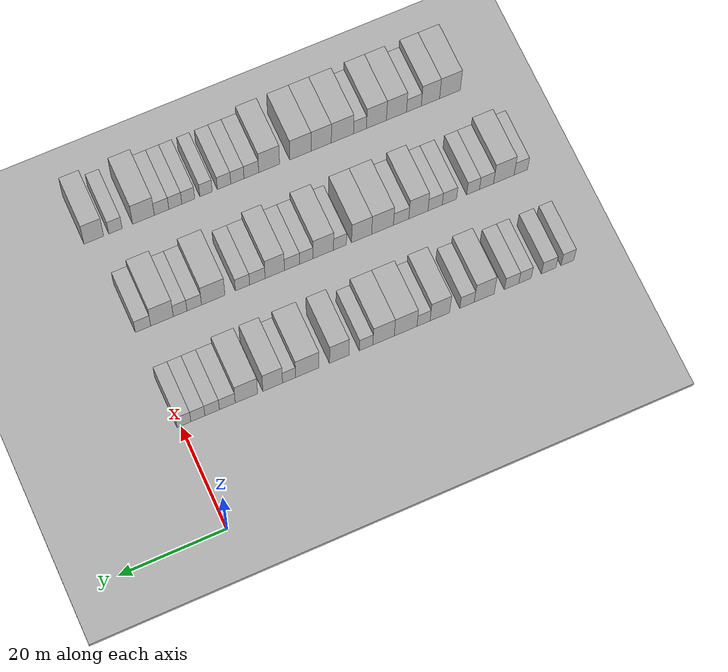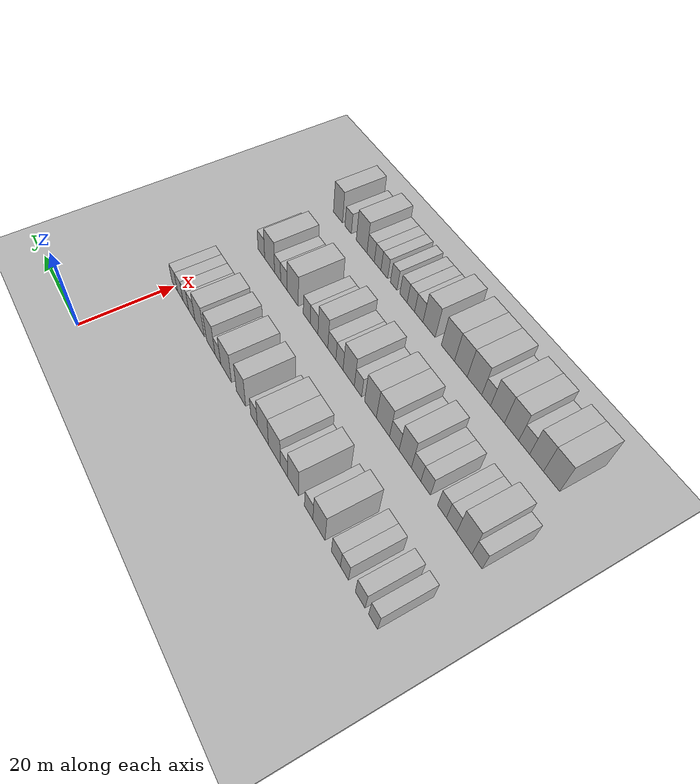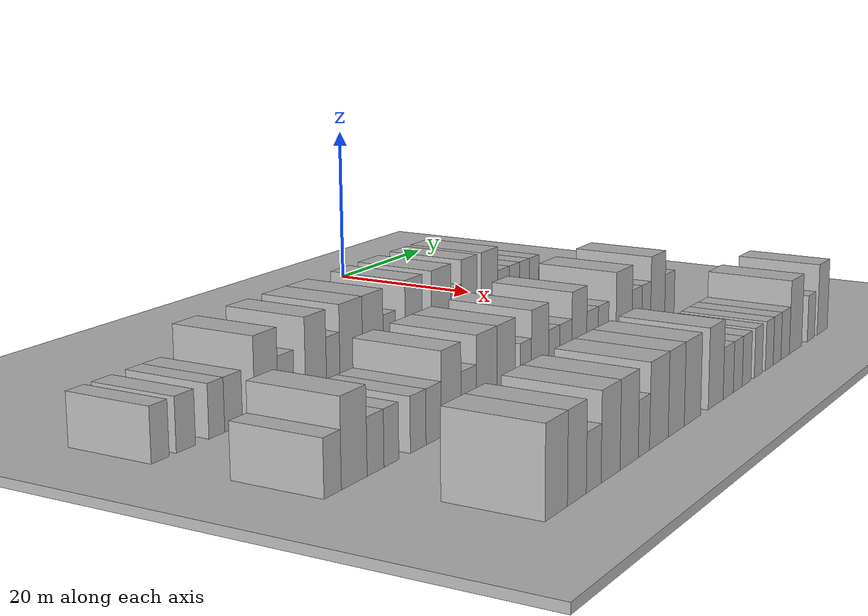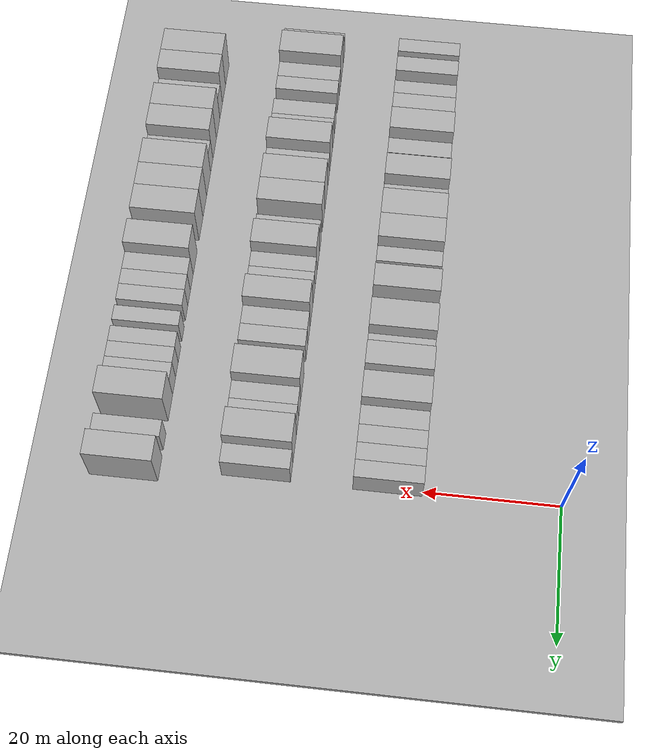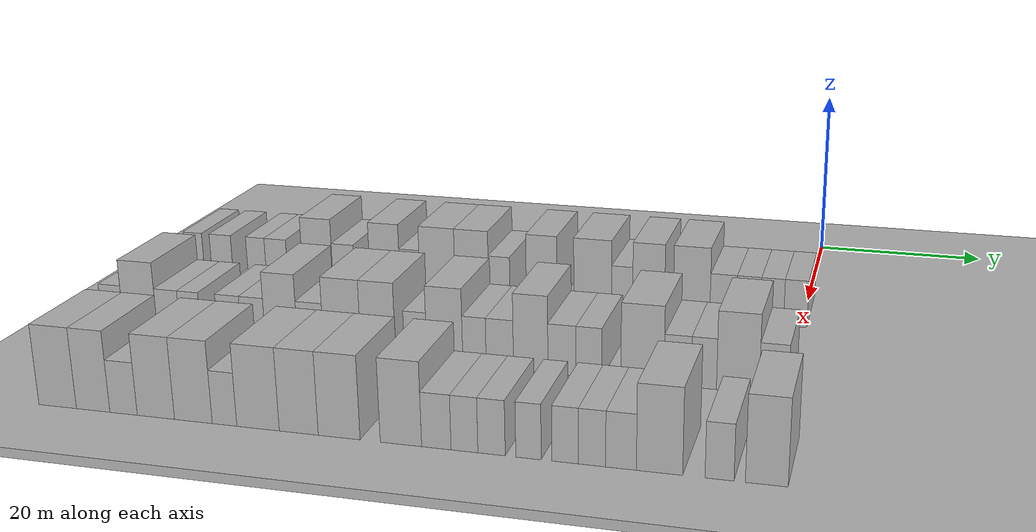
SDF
<sdf version="1.6">
 <world name="default">
  <include><name>ground_plane_1</name><uri>model://HANNAS_ground_plane</uri></include>
  <include>
   <name>ground_plane_2</name>
   <uri>model://HANNAS_ground_plane</uri>
   <pose>100 0 0  0 0 0</pose>
  </include>
  <model name="building_42">
   <static>1</static>
   <pose>25.0000 -74.1656 0 0.000000 0.000000 0.000000</pose>
   <link name="link">
    <pose>0 0 3.00 0 0 0</pose>
    <collision name="collision"><geometry><box><size>10.0000 2.5212 6.0000</size></box></geometry></collision>
    <visual name="visual">
     <cast_shadows>0</cast_shadows>
     <geometry><box><size>10.0000 2.5212 6.0000</size></box></geometry>
     <material>
      <script>
       <uri>model://HANNAS_wall/materials/scripts</uri>
       <uri>model://HANNAS_wall/materials/textures</uri>
       <name>vrc/HANNAS_wall</name>
      </script>
     </material>
    </visual>
   </link>
  </model>
  <model name="building_43">
   <static>1</static>
   <pose>25.0000 -70.4947 0 0.000000 0.000000 0.000000</pose>
   <link name="link">
    <pose>0 0 3.00 0 0 0</pose>
    <collision name="collision"><geometry><box><size>10.0000 2.8206 6.0000</size></box></geometry></collision>
    <visual name="visual">
     <cast_shadows>0</cast_shadows>
     <geometry><box><size>10.0000 2.8206 6.0000</size></box></geometry>
     <material>
      <script>
       <uri>model://HANNAS_wall/materials/scripts</uri>
       <uri>model://HANNAS_wall/materials/textures</uri>
       <name>vrc/HANNAS_wall</name>
      </script>
     </material>
    </visual>
   </link>
  </model>
  <model name="building_44">
   <static>1</static>
   <pose>25.0000 -65.8738 0 0.000000 0.000000 0.000000</pose>
   <link name="link">
    <pose>0 0 3.00 0 0 0</pose>
    <collision name="collision"><geometry><box><size>10.0000 2.4212 6.0000</size></box></geometry></collision>
    <visual name="visual">
     <cast_shadows>0</cast_shadows>
     <geometry><box><size>10.0000 2.4212 6.0000</size></box></geometry>
     <material>
      <script>
       <uri>model://HANNAS_wall/materials/scripts</uri>
       <uri>model://HANNAS_wall/materials/textures</uri>
       <name>vrc/HANNAS_wall</name>
      </script>
     </material>
    </visual>
   </link>
  </model>
  <model name="building_45">
   <static>1</static>
   <pose>25.0000 -63.2611 0 0.000000 0.000000 0.000000</pose>
   <link name="link">
    <pose>0 0 3.00 0 0 0</pose>
    <collision name="collision"><geometry><box><size>10.0000 2.8042 6.0000</size></box></geometry></collision>
    <visual name="visual">
     <cast_shadows>0</cast_shadows>
     <geometry><box><size>10.0000 2.8042 6.0000</size></box></geometry>
     <material>
      <script>
       <uri>model://HANNAS_wall/materials/scripts</uri>
       <uri>model://HANNAS_wall/materials/textures</uri>
       <name>vrc/HANNAS_wall</name>
      </script>
     </material>
    </visual>
   </link>
  </model>
  <model name="building_46">
   <static>1</static>
   <pose>25.0000 -57.9192 0 0.000000 0.000000 0.000000</pose>
   <link name="link">
    <pose>0 0 4.50 0 0 0</pose>
    <collision name="collision"><geometry><box><size>10.0000 3.8795 9.0000</size></box></geometry></collision>
    <visual name="visual">
     <cast_shadows>0</cast_shadows>
     <geometry><box><size>10.0000 3.8795 9.0000</size></box></geometry>
     <material>
      <script>
       <uri>model://HANNAS_wall/materials/scripts</uri>
       <uri>model://HANNAS_wall/materials/textures</uri>
       <name>vrc/HANNAS_wall</name>
      </script>
     </material>
    </visual>
   </link>
  </model>
  <model name="building_47">
   <static>1</static>
   <pose>25.0000 -54.5918 0 0.000000 0.000000 0.000000</pose>
   <link name="link">
    <pose>0 0 3.00 0 0 0</pose>
    <collision name="collision"><geometry><box><size>10.0000 2.7754 6.0000</size></box></geometry></collision>
    <visual name="visual">
     <cast_shadows>0</cast_shadows>
     <geometry><box><size>10.0000 2.7754 6.0000</size></box></geometry>
     <material>
      <script>
       <uri>model://HANNAS_wall/materials/scripts</uri>
       <uri>model://HANNAS_wall/materials/textures</uri>
       <name>vrc/HANNAS_wall</name>
      </script>
     </material>
    </visual>
   </link>
  </model>
  <model name="building_48">
   <static>1</static>
   <pose>25.0000 -49.3145 0 0.000000 0.000000 0.000000</pose>
   <link name="link">
    <pose>0 0 4.50 0 0 0</pose>
    <collision name="collision"><geometry><box><size>10.0000 3.7791 9.0000</size></box></geometry></collision>
    <visual name="visual">
     <cast_shadows>0</cast_shadows>
     <geometry><box><size>10.0000 3.7791 9.0000</size></box></geometry>
     <material>
      <script>
       <uri>model://HANNAS_wall/materials/scripts</uri>
       <uri>model://HANNAS_wall/materials/textures</uri>
       <name>vrc/HANNAS_wall</name>
      </script>
     </material>
    </visual>
   </link>
  </model>
  <model name="building_49">
   <static>1</static>
   <pose>25.0000 -46.1671 0 0.000000 0.000000 0.000000</pose>
   <link name="link">
    <pose>0 0 3.00 0 0 0</pose>
    <collision name="collision"><geometry><box><size>10.0000 2.5156 6.0000</size></box></geometry></collision>
    <visual name="visual">
     <cast_shadows>0</cast_shadows>
     <geometry><box><size>10.0000 2.5156 6.0000</size></box></geometry>
     <material>
      <script>
       <uri>model://HANNAS_wall/materials/scripts</uri>
       <uri>model://HANNAS_wall/materials/textures</uri>
       <name>vrc/HANNAS_wall</name>
      </script>
     </material>
    </visual>
   </link>
  </model>
  <model name="building_50">
   <static>1</static>
   <pose>25.0000 -42.7216 0 0.000000 0.000000 0.000000</pose>
   <link name="link">
    <pose>0 0 4.50 0 0 0</pose>
    <collision name="collision"><geometry><box><size>10.0000 4.3754 9.0000</size></box></geometry></collision>
    <visual name="visual">
     <cast_shadows>0</cast_shadows>
     <geometry><box><size>10.0000 4.3754 9.0000</size></box></geometry>
     <material>
      <script>
       <uri>model://HANNAS_wall/materials/scripts</uri>
       <uri>model://HANNAS_wall/materials/textures</uri>
       <name>vrc/HANNAS_wall</name>
      </script>
     </material>
    </visual>
   </link>
  </model>
  <model name="building_51">
   <static>1</static>
   <pose>25.0000 -38.4709 0 0.000000 0.000000 0.000000</pose>
   <link name="link">
    <pose>0 0 4.50 0 0 0</pose>
    <collision name="collision"><geometry><box><size>10.0000 4.1260 9.0000</size></box></geometry></collision>
    <visual name="visual">
     <cast_shadows>0</cast_shadows>
     <geometry><box><size>10.0000 4.1260 9.0000</size></box></geometry>
     <material>
      <script>
       <uri>model://HANNAS_wall/materials/scripts</uri>
       <uri>model://HANNAS_wall/materials/textures</uri>
       <name>vrc/HANNAS_wall</name>
      </script>
     </material>
    </visual>
   </link>
  </model>
  <model name="building_52">
   <static>1</static>
   <pose>25.0000 -35.1156 0 0.000000 0.000000 0.000000</pose>
   <link name="link">
    <pose>0 0 3.00 0 0 0</pose>
    <collision name="collision"><geometry><box><size>10.0000 2.5847 6.0000</size></box></geometry></collision>
    <visual name="visual">
     <cast_shadows>0</cast_shadows>
     <geometry><box><size>10.0000 2.5847 6.0000</size></box></geometry>
     <material>
      <script>
       <uri>model://HANNAS_wall/materials/scripts</uri>
       <uri>model://HANNAS_wall/materials/textures</uri>
       <name>vrc/HANNAS_wall</name>
      </script>
     </material>
    </visual>
   </link>
  </model>
  <model name="building_53">
   <static>1</static>
   <pose>25.0000 -29.9718 0 0.000000 0.000000 0.000000</pose>
   <link name="link">
    <pose>0 0 4.50 0 0 0</pose>
    <collision name="collision"><geometry><box><size>10.0000 3.7028 9.0000</size></box></geometry></collision>
    <visual name="visual">
     <cast_shadows>0</cast_shadows>
     <geometry><box><size>10.0000 3.7028 9.0000</size></box></geometry>
     <material>
      <script>
       <uri>model://HANNAS_wall/materials/scripts</uri>
       <uri>model://HANNAS_wall/materials/textures</uri>
       <name>vrc/HANNAS_wall</name>
      </script>
     </material>
    </visual>
   </link>
  </model>
  <model name="building_54">
   <static>1</static>
   <pose>25.0000 -23.8751 0 0.000000 0.000000 0.000000</pose>
   <link name="link">
    <pose>0 0 4.50 0 0 0</pose>
    <collision name="collision"><geometry><box><size>10.0000 4.4907 9.0000</size></box></geometry></collision>
    <visual name="visual">
     <cast_shadows>0</cast_shadows>
     <geometry><box><size>10.0000 4.4907 9.0000</size></box></geometry>
     <material>
      <script>
       <uri>model://HANNAS_wall/materials/scripts</uri>
       <uri>model://HANNAS_wall/materials/textures</uri>
       <name>vrc/HANNAS_wall</name>
      </script>
     </material>
    </visual>
   </link>
  </model>
  <model name="building_55">
   <static>1</static>
   <pose>25.0000 -20.3982 0 0.000000 0.000000 0.000000</pose>
   <link name="link">
    <pose>0 0 3.00 0 0 0</pose>
    <collision name="collision"><geometry><box><size>10.0000 2.4630 6.0000</size></box></geometry></collision>
    <visual name="visual">
     <cast_shadows>0</cast_shadows>
     <geometry><box><size>10.0000 2.4630 6.0000</size></box></geometry>
     <material>
      <script>
       <uri>model://HANNAS_wall/materials/scripts</uri>
       <uri>model://HANNAS_wall/materials/textures</uri>
       <name>vrc/HANNAS_wall</name>
      </script>
     </material>
    </visual>
   </link>
  </model>
  <model name="building_56">
   <static>1</static>
   <pose>25.0000 -17.3053 0 0.000000 0.000000 0.000000</pose>
   <link name="link">
    <pose>0 0 4.50 0 0 0</pose>
    <collision name="collision"><geometry><box><size>10.0000 3.7229 9.0000</size></box></geometry></collision>
    <visual name="visual">
     <cast_shadows>0</cast_shadows>
     <geometry><box><size>10.0000 3.7229 9.0000</size></box></geometry>
     <material>
      <script>
       <uri>model://HANNAS_wall/materials/scripts</uri>
       <uri>model://HANNAS_wall/materials/textures</uri>
       <name>vrc/HANNAS_wall</name>
      </script>
     </material>
    </visual>
   </link>
  </model>
  <model name="building_57">
   <static>1</static>
   <pose>25.0000 -12.3346 0 0.000000 0.000000 0.000000</pose>
   <link name="link">
    <pose>0 0 4.50 0 0 0</pose>
    <collision name="collision"><geometry><box><size>10.0000 4.2184 9.0000</size></box></geometry></collision>
    <visual name="visual">
     <cast_shadows>0</cast_shadows>
     <geometry><box><size>10.0000 4.2184 9.0000</size></box></geometry>
     <material>
      <script>
       <uri>model://HANNAS_wall/materials/scripts</uri>
       <uri>model://HANNAS_wall/materials/textures</uri>
       <name>vrc/HANNAS_wall</name>
      </script>
     </material>
    </visual>
   </link>
  </model>
  <model name="building_58">
   <static>1</static>
   <pose>25.0000 -8.7328 0 0.000000 0.000000 0.000000</pose>
   <link name="link">
    <pose>0 0 3.00 0 0 0</pose>
    <collision name="collision"><geometry><box><size>10.0000 2.9853 6.0000</size></box></geometry></collision>
    <visual name="visual">
     <cast_shadows>0</cast_shadows>
     <geometry><box><size>10.0000 2.9853 6.0000</size></box></geometry>
     <material>
      <script>
       <uri>model://HANNAS_wall/materials/scripts</uri>
       <uri>model://HANNAS_wall/materials/textures</uri>
       <name>vrc/HANNAS_wall</name>
      </script>
     </material>
    </visual>
   </link>
  </model>
  <model name="building_59">
   <static>1</static>
   <pose>25.0000 -5.8702 0 0.000000 0.000000 0.000000</pose>
   <link name="link">
    <pose>0 0 3.00 0 0 0</pose>
    <collision name="collision"><geometry><box><size>10.0000 2.7400 6.0000</size></box></geometry></collision>
    <visual name="visual">
     <cast_shadows>0</cast_shadows>
     <geometry><box><size>10.0000 2.7400 6.0000</size></box></geometry>
     <material>
      <script>
       <uri>model://HANNAS_wall/materials/scripts</uri>
       <uri>model://HANNAS_wall/materials/textures</uri>
       <name>vrc/HANNAS_wall</name>
      </script>
     </material>
    </visual>
   </link>
  </model>
  <model name="building_60">
   <static>1</static>
   <pose>25.0000 -3.1860 0 0.000000 0.000000 0.000000</pose>
   <link name="link">
    <pose>0 0 3.00 0 0 0</pose>
    <collision name="collision"><geometry><box><size>10.0000 2.6282 6.0000</size></box></geometry></collision>
    <visual name="visual">
     <cast_shadows>0</cast_shadows>
     <geometry><box><size>10.0000 2.6282 6.0000</size></box></geometry>
     <material>
      <script>
       <uri>model://HANNAS_wall/materials/scripts</uri>
       <uri>model://HANNAS_wall/materials/textures</uri>
       <name>vrc/HANNAS_wall</name>
      </script>
     </material>
    </visual>
   </link>
  </model>
  <model name="building_61">
   <static>1</static>
   <pose>25.0000 -0.5667 0 0.000000 0.000000 0.000000</pose>
   <link name="link">
    <pose>0 0 3.00 0 0 0</pose>
    <collision name="collision"><geometry><box><size>10.0000 2.6105 6.0000</size></box></geometry></collision>
    <visual name="visual">
     <cast_shadows>0</cast_shadows>
     <geometry><box><size>10.0000 2.6105 6.0000</size></box></geometry>
     <material>
      <script>
       <uri>model://HANNAS_wall/materials/scripts</uri>
       <uri>model://HANNAS_wall/materials/textures</uri>
       <name>vrc/HANNAS_wall</name>
      </script>
     </material>
    </visual>
   </link>
  </model>
  <model name="building_164">
   <static>1</static>
   <pose>44.0000 -74.0968 0 0.000000 0.000000 0.000000</pose>
   <link name="link">
    <pose>0 0 3.00 0 0 0</pose>
    <collision name="collision"><geometry><box><size>10.0000 2.6475 6.0000</size></box></geometry></collision>
    <visual name="visual">
     <cast_shadows>0</cast_shadows>
     <geometry><box><size>10.0000 2.6475 6.0000</size></box></geometry>
     <material>
      <script>
       <uri>model://HANNAS_wall/materials/scripts</uri>
       <uri>model://HANNAS_wall/materials/textures</uri>
       <name>vrc/HANNAS_wall</name>
      </script>
     </material>
    </visual>
   </link>
  </model>
  <model name="building_165">
   <static>1</static>
   <pose>44.0000 -70.7334 0 0.000000 0.000000 0.000000</pose>
   <link name="link">
    <pose>0 0 4.50 0 0 0</pose>
    <collision name="collision"><geometry><box><size>10.0000 4.0792 9.0000</size></box></geometry></collision>
    <visual name="visual">
     <cast_shadows>0</cast_shadows>
     <geometry><box><size>10.0000 4.0792 9.0000</size></box></geometry>
     <material>
      <script>
       <uri>model://HANNAS_wall/materials/scripts</uri>
       <uri>model://HANNAS_wall/materials/textures</uri>
       <name>vrc/HANNAS_wall</name>
      </script>
     </material>
    </visual>
   </link>
  </model>
  <model name="building_166">
   <static>1</static>
   <pose>44.0000 -67.3080 0 0.000000 0.000000 0.000000</pose>
   <link name="link">
    <pose>0 0 3.00 0 0 0</pose>
    <collision name="collision"><geometry><box><size>10.0000 2.7715 6.0000</size></box></geometry></collision>
    <visual name="visual">
     <cast_shadows>0</cast_shadows>
     <geometry><box><size>10.0000 2.7715 6.0000</size></box></geometry>
     <material>
      <script>
       <uri>model://HANNAS_wall/materials/scripts</uri>
       <uri>model://HANNAS_wall/materials/textures</uri>
       <name>vrc/HANNAS_wall</name>
      </script>
     </material>
    </visual>
   </link>
  </model>
  <model name="building_167">
   <static>1</static>
   <pose>44.0000 -64.6648 0 0.000000 0.000000 0.000000</pose>
   <link name="link">
    <pose>0 0 3.00 0 0 0</pose>
    <collision name="collision"><geometry><box><size>10.0000 2.5149 6.0000</size></box></geometry></collision>
    <visual name="visual">
     <cast_shadows>0</cast_shadows>
     <geometry><box><size>10.0000 2.5149 6.0000</size></box></geometry>
     <material>
      <script>
       <uri>model://HANNAS_wall/materials/scripts</uri>
       <uri>model://HANNAS_wall/materials/textures</uri>
       <name>vrc/HANNAS_wall</name>
      </script>
     </material>
    </visual>
   </link>
  </model>
  <model name="building_168">
   <static>1</static>
   <pose>44.0000 -60.0041 0 0.000000 0.000000 0.000000</pose>
   <link name="link">
    <pose>0 0 3.00 0 0 0</pose>
    <collision name="collision"><geometry><box><size>10.0000 2.8065 6.0000</size></box></geometry></collision>
    <visual name="visual">
     <cast_shadows>0</cast_shadows>
     <geometry><box><size>10.0000 2.8065 6.0000</size></box></geometry>
     <material>
      <script>
       <uri>model://HANNAS_wall/materials/scripts</uri>
       <uri>model://HANNAS_wall/materials/textures</uri>
       <name>vrc/HANNAS_wall</name>
      </script>
     </material>
    </visual>
   </link>
  </model>
  <model name="building_169">
   <static>1</static>
   <pose>44.0000 -57.1997 0 0.000000 0.000000 0.000000</pose>
   <link name="link">
    <pose>0 0 3.00 0 0 0</pose>
    <collision name="collision"><geometry><box><size>10.0000 2.8023 6.0000</size></box></geometry></collision>
    <visual name="visual">
     <cast_shadows>0</cast_shadows>
     <geometry><box><size>10.0000 2.8023 6.0000</size></box></geometry>
     <material>
      <script>
       <uri>model://HANNAS_wall/materials/scripts</uri>
       <uri>model://HANNAS_wall/materials/textures</uri>
       <name>vrc/HANNAS_wall</name>
      </script>
     </material>
    </visual>
   </link>
  </model>
  <model name="building_170">
   <static>1</static>
   <pose>44.0000 -53.9188 0 0.000000 0.000000 0.000000</pose>
   <link name="link">
    <pose>0 0 4.50 0 0 0</pose>
    <collision name="collision"><geometry><box><size>10.0000 3.7595 9.0000</size></box></geometry></collision>
    <visual name="visual">
     <cast_shadows>0</cast_shadows>
     <geometry><box><size>10.0000 3.7595 9.0000</size></box></geometry>
     <material>
      <script>
       <uri>model://HANNAS_wall/materials/scripts</uri>
       <uri>model://HANNAS_wall/materials/textures</uri>
       <name>vrc/HANNAS_wall</name>
      </script>
     </material>
    </visual>
   </link>
  </model>
  <model name="building_171">
   <static>1</static>
   <pose>44.0000 -50.5417 0 0.000000 0.000000 0.000000</pose>
   <link name="link">
    <pose>0 0 3.00 0 0 0</pose>
    <collision name="collision"><geometry><box><size>10.0000 2.9947 6.0000</size></box></geometry></collision>
    <visual name="visual">
     <cast_shadows>0</cast_shadows>
     <geometry><box><size>10.0000 2.9947 6.0000</size></box></geometry>
     <material>
      <script>
       <uri>model://HANNAS_wall/materials/scripts</uri>
       <uri>model://HANNAS_wall/materials/textures</uri>
       <name>vrc/HANNAS_wall</name>
      </script>
     </material>
    </visual>
   </link>
  </model>
  <model name="building_172">
   <static>1</static>
   <pose>44.0000 -46.9150 0 0.000000 0.000000 0.000000</pose>
   <link name="link">
    <pose>0 0 4.50 0 0 0</pose>
    <collision name="collision"><geometry><box><size>10.0000 4.2586 9.0000</size></box></geometry></collision>
    <visual name="visual">
     <cast_shadows>0</cast_shadows>
     <geometry><box><size>10.0000 4.2586 9.0000</size></box></geometry>
     <material>
      <script>
       <uri>model://HANNAS_wall/materials/scripts</uri>
       <uri>model://HANNAS_wall/materials/textures</uri>
       <name>vrc/HANNAS_wall</name>
      </script>
     </material>
    </visual>
   </link>
  </model>
  <model name="building_173">
   <static>1</static>
   <pose>44.0000 -42.8309 0 0.000000 0.000000 0.000000</pose>
   <link name="link">
    <pose>0 0 4.50 0 0 0</pose>
    <collision name="collision"><geometry><box><size>10.0000 3.9097 9.0000</size></box></geometry></collision>
    <visual name="visual">
     <cast_shadows>0</cast_shadows>
     <geometry><box><size>10.0000 3.9097 9.0000</size></box></geometry>
     <material>
      <script>
       <uri>model://HANNAS_wall/materials/scripts</uri>
       <uri>model://HANNAS_wall/materials/textures</uri>
       <name>vrc/HANNAS_wall</name>
      </script>
     </material>
    </visual>
   </link>
  </model>
  <model name="building_174">
   <static>1</static>
   <pose>44.0000 -38.6258 0 0.000000 0.000000 0.000000</pose>
   <link name="link">
    <pose>0 0 3.00 0 0 0</pose>
    <collision name="collision"><geometry><box><size>10.0000 2.5004 6.0000</size></box></geometry></collision>
    <visual name="visual">
     <cast_shadows>0</cast_shadows>
     <geometry><box><size>10.0000 2.5004 6.0000</size></box></geometry>
     <material>
      <script>
       <uri>model://HANNAS_wall/materials/scripts</uri>
       <uri>model://HANNAS_wall/materials/textures</uri>
       <name>vrc/HANNAS_wall</name>
      </script>
     </material>
    </visual>
   </link>
  </model>
  <model name="building_175">
   <static>1</static>
   <pose>44.0000 -35.3883 0 0.000000 0.000000 0.000000</pose>
   <link name="link">
    <pose>0 0 4.50 0 0 0</pose>
    <collision name="collision"><geometry><box><size>10.0000 3.9746 9.0000</size></box></geometry></collision>
    <visual name="visual">
     <cast_shadows>0</cast_shadows>
     <geometry><box><size>10.0000 3.9746 9.0000</size></box></geometry>
     <material>
      <script>
       <uri>model://HANNAS_wall/materials/scripts</uri>
       <uri>model://HANNAS_wall/materials/textures</uri>
       <name>vrc/HANNAS_wall</name>
      </script>
     </material>
    </visual>
   </link>
  </model>
  <model name="building_176">
   <static>1</static>
   <pose>44.0000 -32.1208 0 0.000000 0.000000 0.000000</pose>
   <link name="link">
    <pose>0 0 3.00 0 0 0</pose>
    <collision name="collision"><geometry><box><size>10.0000 2.5604 6.0000</size></box></geometry></collision>
    <visual name="visual">
     <cast_shadows>0</cast_shadows>
     <geometry><box><size>10.0000 2.5604 6.0000</size></box></geometry>
     <material>
      <script>
       <uri>model://HANNAS_wall/materials/scripts</uri>
       <uri>model://HANNAS_wall/materials/textures</uri>
       <name>vrc/HANNAS_wall</name>
      </script>
     </material>
    </visual>
   </link>
  </model>
  <model name="building_177">
   <static>1</static>
   <pose>44.0000 -29.3573 0 0.000000 0.000000 0.000000</pose>
   <link name="link">
    <pose>0 0 3.00 0 0 0</pose>
    <collision name="collision"><geometry><box><size>10.0000 2.9667 6.0000</size></box></geometry></collision>
    <visual name="visual">
     <cast_shadows>0</cast_shadows>
     <geometry><box><size>10.0000 2.9667 6.0000</size></box></geometry>
     <material>
      <script>
       <uri>model://HANNAS_wall/materials/scripts</uri>
       <uri>model://HANNAS_wall/materials/textures</uri>
       <name>vrc/HANNAS_wall</name>
      </script>
     </material>
    </visual>
   </link>
  </model>
  <model name="building_178">
   <static>1</static>
   <pose>44.0000 -26.0195 0 0.000000 0.000000 0.000000</pose>
   <link name="link">
    <pose>0 0 4.50 0 0 0</pose>
    <collision name="collision"><geometry><box><size>10.0000 3.7088 9.0000</size></box></geometry></collision>
    <visual name="visual">
     <cast_shadows>0</cast_shadows>
     <geometry><box><size>10.0000 3.7088 9.0000</size></box></geometry>
     <material>
      <script>
       <uri>model://HANNAS_wall/materials/scripts</uri>
       <uri>model://HANNAS_wall/materials/textures</uri>
       <name>vrc/HANNAS_wall</name>
      </script>
     </material>
    </visual>
   </link>
  </model>
  <model name="building_179">
   <static>1</static>
   <pose>44.0000 -22.6777 0 0.000000 0.000000 0.000000</pose>
   <link name="link">
    <pose>0 0 3.00 0 0 0</pose>
    <collision name="collision"><geometry><box><size>10.0000 2.9748 6.0000</size></box></geometry></collision>
    <visual name="visual">
     <cast_shadows>0</cast_shadows>
     <geometry><box><size>10.0000 2.9748 6.0000</size></box></geometry>
     <material>
      <script>
       <uri>model://HANNAS_wall/materials/scripts</uri>
       <uri>model://HANNAS_wall/materials/textures</uri>
       <name>vrc/HANNAS_wall</name>
      </script>
     </material>
    </visual>
   </link>
  </model>
  <model name="building_180">
   <static>1</static>
   <pose>44.0000 -19.8198 0 0.000000 0.000000 0.000000</pose>
   <link name="link">
    <pose>0 0 3.00 0 0 0</pose>
    <collision name="collision"><geometry><box><size>10.0000 2.7412 6.0000</size></box></geometry></collision>
    <visual name="visual">
     <cast_shadows>0</cast_shadows>
     <geometry><box><size>10.0000 2.7412 6.0000</size></box></geometry>
     <material>
      <script>
       <uri>model://HANNAS_wall/materials/scripts</uri>
       <uri>model://HANNAS_wall/materials/textures</uri>
       <name>vrc/HANNAS_wall</name>
      </script>
     </material>
    </visual>
   </link>
  </model>
  <model name="building_181">
   <static>1</static>
   <pose>44.0000 -14.2108 0 0.000000 0.000000 0.000000</pose>
   <link name="link">
    <pose>0 0 4.50 0 0 0</pose>
    <collision name="collision"><geometry><box><size>10.0000 4.4768 9.0000</size></box></geometry></collision>
    <visual name="visual">
     <cast_shadows>0</cast_shadows>
     <geometry><box><size>10.0000 4.4768 9.0000</size></box></geometry>
     <material>
      <script>
       <uri>model://HANNAS_wall/materials/scripts</uri>
       <uri>model://HANNAS_wall/materials/textures</uri>
       <name>vrc/HANNAS_wall</name>
      </script>
     </material>
    </visual>
   </link>
  </model>
  <model name="building_182">
   <static>1</static>
   <pose>44.0000 -10.5837 0 0.000000 0.000000 0.000000</pose>
   <link name="link">
    <pose>0 0 3.00 0 0 0</pose>
    <collision name="collision"><geometry><box><size>10.0000 2.7774 6.0000</size></box></geometry></collision>
    <visual name="visual">
     <cast_shadows>0</cast_shadows>
     <geometry><box><size>10.0000 2.7774 6.0000</size></box></geometry>
     <material>
      <script>
       <uri>model://HANNAS_wall/materials/scripts</uri>
       <uri>model://HANNAS_wall/materials/textures</uri>
       <name>vrc/HANNAS_wall</name>
      </script>
     </material>
    </visual>
   </link>
  </model>
  <model name="building_183">
   <static>1</static>
   <pose>44.0000 -7.8961 0 0.000000 0.000000 0.000000</pose>
   <link name="link">
    <pose>0 0 3.00 0 0 0</pose>
    <collision name="collision"><geometry><box><size>10.0000 2.5979 6.0000</size></box></geometry></collision>
    <visual name="visual">
     <cast_shadows>0</cast_shadows>
     <geometry><box><size>10.0000 2.5979 6.0000</size></box></geometry>
     <material>
      <script>
       <uri>model://HANNAS_wall/materials/scripts</uri>
       <uri>model://HANNAS_wall/materials/textures</uri>
       <name>vrc/HANNAS_wall</name>
      </script>
     </material>
    </visual>
   </link>
  </model>
  <model name="building_184">
   <static>1</static>
   <pose>44.0000 -4.4448 0 0.000000 0.000000 0.000000</pose>
   <link name="link">
    <pose>0 0 4.50 0 0 0</pose>
    <collision name="collision"><geometry><box><size>10.0000 4.3047 9.0000</size></box></geometry></collision>
    <visual name="visual">
     <cast_shadows>0</cast_shadows>
     <geometry><box><size>10.0000 4.3047 9.0000</size></box></geometry>
     <material>
      <script>
       <uri>model://HANNAS_wall/materials/scripts</uri>
       <uri>model://HANNAS_wall/materials/textures</uri>
       <name>vrc/HANNAS_wall</name>
      </script>
     </material>
    </visual>
   </link>
  </model>
  <model name="building_185">
   <static>1</static>
   <pose>44.0000 -0.8266 0 0.000000 0.000000 0.000000</pose>
   <link name="link">
    <pose>0 0 3.00 0 0 0</pose>
    <collision name="collision"><geometry><box><size>10.0000 2.9317 6.0000</size></box></geometry></collision>
    <visual name="visual">
     <cast_shadows>0</cast_shadows>
     <geometry><box><size>10.0000 2.9317 6.0000</size></box></geometry>
     <material>
      <script>
       <uri>model://HANNAS_wall/materials/scripts</uri>
       <uri>model://HANNAS_wall/materials/textures</uri>
       <name>vrc/HANNAS_wall</name>
      </script>
     </material>
    </visual>
   </link>
  </model>
  <model name="building_294">
   <static>1</static>
   <pose>63.0000 -68.9407 0 0.000000 0.000000 0.000000</pose>
   <link name="link">
    <pose>0 0 4.50 0 0 0</pose>
    <collision name="collision"><geometry><box><size>10.0000 4.1233 9.0000</size></box></geometry></collision>
    <visual name="visual">
     <cast_shadows>0</cast_shadows>
     <geometry><box><size>10.0000 4.1233 9.0000</size></box></geometry>
     <material>
      <script>
       <uri>model://HANNAS_wall/materials/scripts</uri>
       <uri>model://HANNAS_wall/materials/textures</uri>
       <name>vrc/HANNAS_wall</name>
      </script>
     </material>
    </visual>
   </link>
  </model>
  <model name="building_295">
   <static>1</static>
   <pose>63.0000 -65.0556 0 0.000000 0.000000 0.000000</pose>
   <link name="link">
    <pose>0 0 4.50 0 0 0</pose>
    <collision name="collision"><geometry><box><size>10.0000 3.6468 9.0000</size></box></geometry></collision>
    <visual name="visual">
     <cast_shadows>0</cast_shadows>
     <geometry><box><size>10.0000 3.6468 9.0000</size></box></geometry>
     <material>
      <script>
       <uri>model://HANNAS_wall/materials/scripts</uri>
       <uri>model://HANNAS_wall/materials/textures</uri>
       <name>vrc/HANNAS_wall</name>
      </script>
     </material>
    </visual>
   </link>
  </model>
  <model name="building_296">
   <static>1</static>
   <pose>63.0000 -61.7579 0 0.000000 0.000000 0.000000</pose>
   <link name="link">
    <pose>0 0 3.00 0 0 0</pose>
    <collision name="collision"><geometry><box><size>10.0000 2.9486 6.0000</size></box></geometry></collision>
    <visual name="visual">
     <cast_shadows>0</cast_shadows>
     <geometry><box><size>10.0000 2.9486 6.0000</size></box></geometry>
     <material>
      <script>
       <uri>model://HANNAS_wall/materials/scripts</uri>
       <uri>model://HANNAS_wall/materials/textures</uri>
       <name>vrc/HANNAS_wall</name>
      </script>
     </material>
    </visual>
   </link>
  </model>
  <model name="building_297">
   <static>1</static>
   <pose>63.0000 -58.3008 0 0.000000 0.000000 0.000000</pose>
   <link name="link">
    <pose>0 0 4.50 0 0 0</pose>
    <collision name="collision"><geometry><box><size>10.0000 3.9657 9.0000</size></box></geometry></collision>
    <visual name="visual">
     <cast_shadows>0</cast_shadows>
     <geometry><box><size>10.0000 3.9657 9.0000</size></box></geometry>
     <material>
      <script>
       <uri>model://HANNAS_wall/materials/scripts</uri>
       <uri>model://HANNAS_wall/materials/textures</uri>
       <name>vrc/HANNAS_wall</name>
      </script>
     </material>
    </visual>
   </link>
  </model>
  <model name="building_298">
   <static>1</static>
   <pose>63.0000 -54.3344 0 0.000000 0.000000 0.000000</pose>
   <link name="link">
    <pose>0 0 4.50 0 0 0</pose>
    <collision name="collision"><geometry><box><size>10.0000 3.9670 9.0000</size></box></geometry></collision>
    <visual name="visual">
     <cast_shadows>0</cast_shadows>
     <geometry><box><size>10.0000 3.9670 9.0000</size></box></geometry>
     <material>
      <script>
       <uri>model://HANNAS_wall/materials/scripts</uri>
       <uri>model://HANNAS_wall/materials/textures</uri>
       <name>vrc/HANNAS_wall</name>
      </script>
     </material>
    </visual>
   </link>
  </model>
  <model name="building_299">
   <static>1</static>
   <pose>63.0000 -51.0726 0 0.000000 0.000000 0.000000</pose>
   <link name="link">
    <pose>0 0 3.00 0 0 0</pose>
    <collision name="collision"><geometry><box><size>10.0000 2.5566 6.0000</size></box></geometry></collision>
    <visual name="visual">
     <cast_shadows>0</cast_shadows>
     <geometry><box><size>10.0000 2.5566 6.0000</size></box></geometry>
     <material>
      <script>
       <uri>model://HANNAS_wall/materials/scripts</uri>
       <uri>model://HANNAS_wall/materials/textures</uri>
       <name>vrc/HANNAS_wall</name>
      </script>
     </material>
    </visual>
   </link>
  </model>
  <model name="building_300">
   <static>1</static>
   <pose>63.0000 -47.6062 0 0.000000 0.000000 0.000000</pose>
   <link name="link">
    <pose>0 0 4.50 0 0 0</pose>
    <collision name="collision"><geometry><box><size>10.0000 4.3761 9.0000</size></box></geometry></collision>
    <visual name="visual">
     <cast_shadows>0</cast_shadows>
     <geometry><box><size>10.0000 4.3761 9.0000</size></box></geometry>
     <material>
      <script>
       <uri>model://HANNAS_wall/materials/scripts</uri>
       <uri>model://HANNAS_wall/materials/textures</uri>
       <name>vrc/HANNAS_wall</name>
      </script>
     </material>
    </visual>
   </link>
  </model>
  <model name="building_301">
   <static>1</static>
   <pose>63.0000 -43.4408 0 0.000000 0.000000 0.000000</pose>
   <link name="link">
    <pose>0 0 4.50 0 0 0</pose>
    <collision name="collision"><geometry><box><size>10.0000 3.9547 9.0000</size></box></geometry></collision>
    <visual name="visual">
     <cast_shadows>0</cast_shadows>
     <geometry><box><size>10.0000 3.9547 9.0000</size></box></geometry>
     <material>
      <script>
       <uri>model://HANNAS_wall/materials/scripts</uri>
       <uri>model://HANNAS_wall/materials/textures</uri>
       <name>vrc/HANNAS_wall</name>
      </script>
     </material>
    </visual>
   </link>
  </model>
  <model name="building_302">
   <static>1</static>
   <pose>63.0000 -39.3675 0 0.000000 0.000000 0.000000</pose>
   <link name="link">
    <pose>0 0 4.50 0 0 0</pose>
    <collision name="collision"><geometry><box><size>10.0000 4.1920 9.0000</size></box></geometry></collision>
    <visual name="visual">
     <cast_shadows>0</cast_shadows>
     <geometry><box><size>10.0000 4.1920 9.0000</size></box></geometry>
     <material>
      <script>
       <uri>model://HANNAS_wall/materials/scripts</uri>
       <uri>model://HANNAS_wall/materials/textures</uri>
       <name>vrc/HANNAS_wall</name>
      </script>
     </material>
    </visual>
   </link>
  </model>
  <model name="building_303">
   <static>1</static>
   <pose>63.0000 -33.2353 0 0.000000 0.000000 0.000000</pose>
   <link name="link">
    <pose>0 0 4.50 0 0 0</pose>
    <collision name="collision"><geometry><box><size>10.0000 4.0724 9.0000</size></box></geometry></collision>
    <visual name="visual">
     <cast_shadows>0</cast_shadows>
     <geometry><box><size>10.0000 4.0724 9.0000</size></box></geometry>
     <material>
      <script>
       <uri>model://HANNAS_wall/materials/scripts</uri>
       <uri>model://HANNAS_wall/materials/textures</uri>
       <name>vrc/HANNAS_wall</name>
      </script>
     </material>
    </visual>
   </link>
  </model>
  <model name="building_304">
   <static>1</static>
   <pose>63.0000 -29.7680 0 0.000000 0.000000 0.000000</pose>
   <link name="link">
    <pose>0 0 3.00 0 0 0</pose>
    <collision name="collision"><geometry><box><size>10.0000 2.8621 6.0000</size></box></geometry></collision>
    <visual name="visual">
     <cast_shadows>0</cast_shadows>
     <geometry><box><size>10.0000 2.8621 6.0000</size></box></geometry>
     <material>
      <script>
       <uri>model://HANNAS_wall/materials/scripts</uri>
       <uri>model://HANNAS_wall/materials/textures</uri>
       <name>vrc/HANNAS_wall</name>
      </script>
     </material>
    </visual>
   </link>
  </model>
  <model name="building_305">
   <static>1</static>
   <pose>63.0000 -27.0472 0 0.000000 0.000000 0.000000</pose>
   <link name="link">
    <pose>0 0 3.00 0 0 0</pose>
    <collision name="collision"><geometry><box><size>10.0000 2.5796 6.0000</size></box></geometry></collision>
    <visual name="visual">
     <cast_shadows>0</cast_shadows>
     <geometry><box><size>10.0000 2.5796 6.0000</size></box></geometry>
     <material>
      <script>
       <uri>model://HANNAS_wall/materials/scripts</uri>
       <uri>model://HANNAS_wall/materials/textures</uri>
       <name>vrc/HANNAS_wall</name>
      </script>
     </material>
    </visual>
   </link>
  </model>
  <model name="building_306">
   <static>1</static>
   <pose>63.0000 -24.4523 0 0.000000 0.000000 0.000000</pose>
   <link name="link">
    <pose>0 0 3.00 0 0 0</pose>
    <collision name="collision"><geometry><box><size>10.0000 2.6100 6.0000</size></box></geometry></collision>
    <visual name="visual">
     <cast_shadows>0</cast_shadows>
     <geometry><box><size>10.0000 2.6100 6.0000</size></box></geometry>
     <material>
      <script>
       <uri>model://HANNAS_wall/materials/scripts</uri>
       <uri>model://HANNAS_wall/materials/textures</uri>
       <name>vrc/HANNAS_wall</name>
      </script>
     </material>
    </visual>
   </link>
  </model>
  <model name="building_307">
   <static>1</static>
   <pose>63.0000 -20.9467 0 0.000000 0.000000 0.000000</pose>
   <link name="link">
    <pose>0 0 3.00 0 0 0</pose>
    <collision name="collision"><geometry><box><size>10.0000 2.4012 6.0000</size></box></geometry></collision>
    <visual name="visual">
     <cast_shadows>0</cast_shadows>
     <geometry><box><size>10.0000 2.4012 6.0000</size></box></geometry>
     <material>
      <script>
       <uri>model://HANNAS_wall/materials/scripts</uri>
       <uri>model://HANNAS_wall/materials/textures</uri>
       <name>vrc/HANNAS_wall</name>
      </script>
     </material>
    </visual>
   </link>
  </model>
  <model name="building_308">
   <static>1</static>
   <pose>63.0000 -17.5079 0 0.000000 0.000000 0.000000</pose>
   <link name="link">
    <pose>0 0 3.00 0 0 0</pose>
    <collision name="collision"><geometry><box><size>10.0000 2.4765 6.0000</size></box></geometry></collision>
    <visual name="visual">
     <cast_shadows>0</cast_shadows>
     <geometry><box><size>10.0000 2.4765 6.0000</size></box></geometry>
     <material>
      <script>
       <uri>model://HANNAS_wall/materials/scripts</uri>
       <uri>model://HANNAS_wall/materials/textures</uri>
       <name>vrc/HANNAS_wall</name>
      </script>
     </material>
    </visual>
   </link>
  </model>
  <model name="building_309">
   <static>1</static>
   <pose>63.0000 -15.0133 0 0.000000 0.000000 0.000000</pose>
   <link name="link">
    <pose>0 0 3.00 0 0 0</pose>
    <collision name="collision"><geometry><box><size>10.0000 2.5126 6.0000</size></box></geometry></collision>
    <visual name="visual">
     <cast_shadows>0</cast_shadows>
     <geometry><box><size>10.0000 2.5126 6.0000</size></box></geometry>
     <material>
      <script>
       <uri>model://HANNAS_wall/materials/scripts</uri>
       <uri>model://HANNAS_wall/materials/textures</uri>
       <name>vrc/HANNAS_wall</name>
      </script>
     </material>
    </visual>
   </link>
  </model>
  <model name="building_310">
   <static>1</static>
   <pose>63.0000 -12.3483 0 0.000000 0.000000 0.000000</pose>
   <link name="link">
    <pose>0 0 3.00 0 0 0</pose>
    <collision name="collision"><geometry><box><size>10.0000 2.8175 6.0000</size></box></geometry></collision>
    <visual name="visual">
     <cast_shadows>0</cast_shadows>
     <geometry><box><size>10.0000 2.8175 6.0000</size></box></geometry>
     <material>
      <script>
       <uri>model://HANNAS_wall/materials/scripts</uri>
       <uri>model://HANNAS_wall/materials/textures</uri>
       <name>vrc/HANNAS_wall</name>
      </script>
     </material>
    </visual>
   </link>
  </model>
  <model name="building_311">
   <static>1</static>
   <pose>63.0000 -8.8454 0 0.000000 0.000000 0.000000</pose>
   <link name="link">
    <pose>0 0 4.50 0 0 0</pose>
    <collision name="collision"><geometry><box><size>10.0000 4.1883 9.0000</size></box></geometry></collision>
    <visual name="visual">
     <cast_shadows>0</cast_shadows>
     <geometry><box><size>10.0000 4.1883 9.0000</size></box></geometry>
     <material>
      <script>
       <uri>model://HANNAS_wall/materials/scripts</uri>
       <uri>model://HANNAS_wall/materials/textures</uri>
       <name>vrc/HANNAS_wall</name>
      </script>
     </material>
    </visual>
   </link>
  </model>
  <model name="building_312">
   <static>1</static>
   <pose>63.0000 -3.4644 0 0.000000 0.000000 0.000000</pose>
   <link name="link">
    <pose>0 0 3.00 0 0 0</pose>
    <collision name="collision"><geometry><box><size>10.0000 2.5737 6.0000</size></box></geometry></collision>
    <visual name="visual">
     <cast_shadows>0</cast_shadows>
     <geometry><box><size>10.0000 2.5737 6.0000</size></box></geometry>
     <material>
      <script>
       <uri>model://HANNAS_wall/materials/scripts</uri>
       <uri>model://HANNAS_wall/materials/textures</uri>
       <name>vrc/HANNAS_wall</name>
      </script>
     </material>
    </visual>
   </link>
  </model>
  <model name="building_313">
   <static>1</static>
   <pose>63.0000 0.7025 0 0.000000 0.000000 0.000000</pose>
   <link name="link">
    <pose>0 0 4.50 0 0 0</pose>
    <collision name="collision"><geometry><box><size>10.0000 3.7601 9.0000</size></box></geometry></collision>
    <visual name="visual">
     <cast_shadows>0</cast_shadows>
     <geometry><box><size>10.0000 3.7601 9.0000</size></box></geometry>
     <material>
      <script>
       <uri>model://HANNAS_wall/materials/scripts</uri>
       <uri>model://HANNAS_wall/materials/textures</uri>
       <name>vrc/HANNAS_wall</name>
      </script>
     </material>
    </visual>
   </link>
  </model>
 </world>
</sdf>
